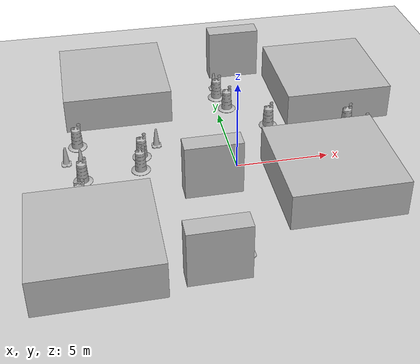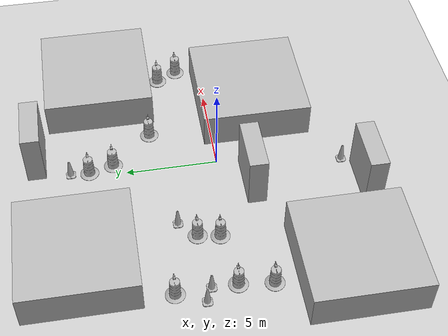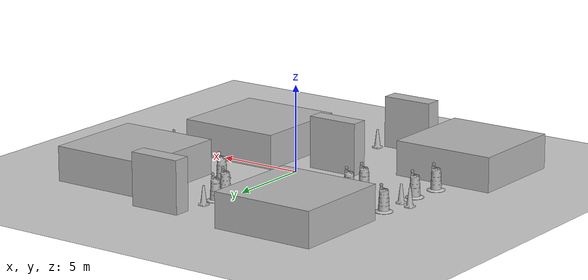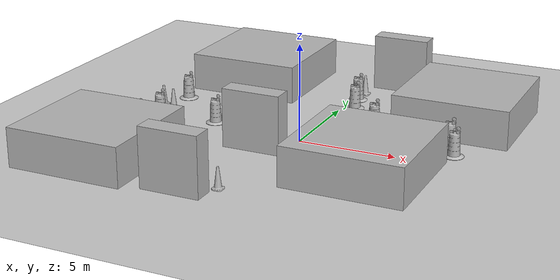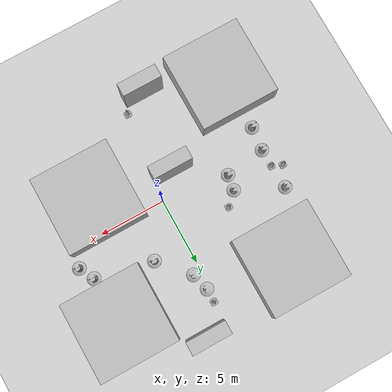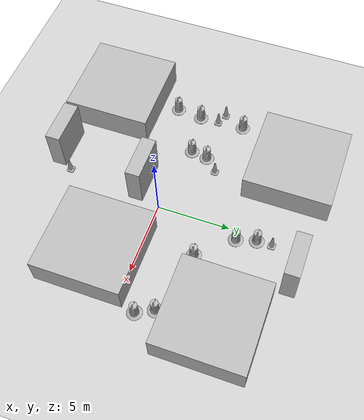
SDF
<sdf version="1.7">
 <world name="default">
  <light name="sun" type="directional">
   <pose>0 0 10 0 -0 0</pose>
   <diffuse>0.8 0.8 0.8 1</diffuse>
   <specular>0.2 0.2 0.2 1</specular>
   <attenuation>
    <range>1000</range>
    <constant>0.9</constant>
    <linear>0.01</linear>
    <quadratic>0.001</quadratic>
   </attenuation>
   <direction>-0.5 0.1 -0.9</direction>
   <spot><inner_angle>0</inner_angle><outer_angle>0</outer_angle><falloff>0</falloff></spot>
  </light>
  <model name="ground_plane">
   <static>1</static>
   <link name="link">
    <collision name="collision">
     <geometry><plane><normal>0 0 1</normal><size>100 100</size></plane></geometry>
     <surface><friction><ode><mu>100</mu><mu2>50</mu2></ode></friction></surface>
    </collision>
    <visual name="visual">
     <cast_shadows>0</cast_shadows>
     <geometry><plane><normal>0 0 1</normal><size>100 100</size></plane></geometry>
     <material>
      <script><uri>file://media/materials/scripts/gazebo.material</uri><name>Gazebo/Grey</name></script>
     </material>
    </visual>
   </link>
  </model>
  <gravity>0 0 -9.8</gravity>
  <magnetic_field>6e-06 2.3e-05 -4.2e-05</magnetic_field>
  <atmosphere type="adiabatic"/>
  <physics type="ode">
   <max_step_size>0.005</max_step_size>
   <real_time_factor>1</real_time_factor>
   <real_time_update_rate>200</real_time_update_rate>
  </physics>
  <scene><ambient>0.4 0.4 0.4 1</ambient><background>0.7 0.7 0.7 1</background><shadows>1</shadows></scene>
  <audio><device>default</device></audio>
  <spherical_coordinates>
   <surface_model>EARTH_WGS84</surface_model>
   <latitude_deg>0</latitude_deg>
   <longitude_deg>0</longitude_deg>
   <elevation>0</elevation>
   <heading_deg>0</heading_deg>
  </spherical_coordinates>
  <model name="box_target_red">
   <pose>-7.90417 -5.76292 1 0 -0 0</pose>
   <static>1</static>
   <link name="link">
    <collision name="collision"><geometry><box><size>6 6 2</size></box></geometry></collision>
    <visual name="visual">
     <geometry><mesh><uri>model://box_target_red/meshes/mesh.dae</uri></mesh></geometry>
    </visual>
   </link>
  </model>
  <model name="brick_box_3x1x3">
   <static>1</static>
   <link name="chassis">
    <pose>0 0 1.5 0 -0 0</pose>
    <collision name="collision"><geometry><box><size>3 1 3</size></box></geometry></collision>
    <visual name="visual">
     <geometry><mesh><uri>model://brick_box_3x1x3/meshes/simple_box.dae</uri><scale>3 1 3</scale></mesh></geometry>
     <material>
      <script>
       <uri>model://brick_box_3x1x3/materials/scripts</uri>
       <uri>model://brick_box_3x1x3/materials/textures</uri>
       <name>BrickBox/Diffuse</name>
      </script>
     </material>
    </visual>
   </link>
   <pose>-2.56376 -7.80352 0 0 -0 0</pose>
  </model>
  <model name="brick_box_3x1x3_0">
   <static>1</static>
   <link name="chassis">
    <pose>0 0 1.5 0 -0 0</pose>
    <collision name="collision"><geometry><box><size>3 1 3</size></box></geometry></collision>
    <visual name="visual">
     <geometry><mesh><uri>model://brick_box_3x1x3/meshes/simple_box.dae</uri><scale>3 1 3</scale></mesh></geometry>
     <material>
      <script>
       <uri>model://brick_box_3x1x3/materials/scripts</uri>
       <uri>model://brick_box_3x1x3/materials/textures</uri>
       <name>BrickBox/Diffuse</name>
      </script>
     </material>
    </visual>
   </link>
   <pose>1.80974 9.84653 0 0 -0 0</pose>
  </model>
  <model name="Construction Barrel">
   <link name="link">
    <inertial>
     <pose>0 0 0.4 0 -0 0</pose>
     <mass>500</mass>
     <inertia><ixx>51.2096</ixx><iyy>51.2096</iyy><izz>25</izz><ixy>0</ixy><ixz>0</ixz><iyz>0</iyz></inertia>
    </inertial>
    <collision name="collision">
     <geometry><mesh><uri>model://construction_barrel/meshes/construction_barrel.dae</uri></mesh></geometry>
    </collision>
    <visual name="visual">
     <geometry><mesh><uri>model://construction_barrel/meshes/construction_barrel.dae</uri></mesh></geometry>
    </visual>
   </link>
   <pose>-8.29211 -1.57068 1e-06 3e-06 2e-06 -2.8e-05</pose>
  </model>
  <model name="Construction Barrel_0">
   <link name="link">
    <inertial>
     <pose>0 0 0.4 0 -0 0</pose>
     <mass>500</mass>
     <inertia><ixx>51.2096</ixx><iyy>51.2096</iyy><izz>25</izz><ixy>0</ixy><ixz>0</ixz><iyz>0</iyz></inertia>
    </inertial>
    <collision name="collision">
     <geometry><mesh><uri>model://construction_barrel/meshes/construction_barrel.dae</uri></mesh></geometry>
    </collision>
    <visual name="visual">
     <geometry><mesh><uri>model://construction_barrel/meshes/construction_barrel.dae</uri></mesh></geometry>
    </visual>
   </link>
   <pose>-8.09168 0.234017 1e-06 3e-06 2e-06 -2.7e-05</pose>
  </model>
  <model name="box_target_green">
   <pose>6.60992 6.07777 1 0 -0 0</pose>
   <static>1</static>
   <link name="link">
    <collision name="collision"><geometry><box><size>6 6 2</size></box></geometry></collision>
    <visual name="visual">
     <geometry><mesh><uri>model://box_target_green/meshes/mesh.dae</uri></mesh></geometry>
    </visual>
   </link>
  </model>
  <model name="box_target_green_0">
   <pose>4.41531 -2.53798 1 0 -0 0</pose>
   <static>1</static>
   <link name="link">
    <collision name="collision"><geometry><box><size>6 6 2</size></box></geometry></collision>
    <visual name="visual">
     <geometry><mesh><uri>model://box_target_green/meshes/mesh.dae</uri></mesh></geometry>
    </visual>
   </link>
  </model>
  <model name="Construction Cone">
   <link name="link">
    <collision name="collision">
     <geometry>
      <mesh><scale>10 10 10</scale><uri>model://construction_cone/meshes/construction_cone.dae</uri></mesh>
     </geometry>
    </collision>
    <visual name="visual">
     <geometry>
      <mesh><scale>10 10 10</scale><uri>model://construction_cone/meshes/construction_cone.dae</uri></mesh>
     </geometry>
    </visual>
    <inertial>
     <inertia><ixx>1</ixx><ixy>0</ixy><ixz>0</ixz><iyy>1</iyy><iyz>0</iyz><izz>1</izz></inertia>
     <mass>1</mass>
    </inertial>
   </link>
   <pose>-8.87093 1.90009 -1e-05 -1e-06 0 0</pose>
  </model>
  <model name="Construction Barrel_1">
   <link name="link">
    <inertial>
     <pose>0 0 0.4 0 -0 0</pose>
     <mass>500</mass>
     <inertia><ixx>51.2096</ixx><iyy>51.2096</iyy><izz>25</izz><ixy>0</ixy><ixz>0</ixz><iyz>0</iyz></inertia>
    </inertial>
    <collision name="collision">
     <geometry><mesh><uri>model://construction_barrel/meshes/construction_barrel.dae</uri></mesh></geometry>
    </collision>
    <visual name="visual">
     <geometry><mesh><uri>model://construction_barrel/meshes/construction_barrel.dae</uri></mesh></geometry>
    </visual>
   </link>
   <pose>-8.2063 3.40038 1e-06 3e-06 2e-06 -2.2e-05</pose>
  </model>
  <model name="box_target_red_0">
   <pose>-5.71464 7.96418 1 0 -0 0</pose>
   <static>1</static>
   <link name="link">
    <collision name="collision"><geometry><box><size>6 6 2</size></box></geometry></collision>
    <visual name="visual">
     <geometry><mesh><uri>model://box_target_red/meshes/mesh.dae</uri></mesh></geometry>
    </visual>
   </link>
  </model>
  <model name="Construction Cone_0">
   <link name="link">
    <collision name="collision">
     <geometry>
      <mesh><scale>10 10 10</scale><uri>model://construction_cone/meshes/construction_cone.dae</uri></mesh>
     </geometry>
    </collision>
    <visual name="visual">
     <geometry>
      <mesh><scale>10 10 10</scale><uri>model://construction_cone/meshes/construction_cone.dae</uri></mesh>
     </geometry>
    </visual>
    <inertial>
     <inertia><ixx>1</ixx><ixy>0</ixy><ixz>0</ixz><iyy>1</iyy><iyz>0</iyz><izz>1</izz></inertia>
     <mass>1</mass>
    </inertial>
   </link>
   <pose>0.300631 8.02026 -1e-05 0 -0 0</pose>
  </model>
  <model name="Construction Barrel_2">
   <link name="link">
    <inertial>
     <pose>0 0 0.4 0 -0 0</pose>
     <mass>500</mass>
     <inertia><ixx>51.2096</ixx><iyy>51.2096</iyy><izz>25</izz><ixy>0</ixy><ixz>0</ixz><iyz>0</iyz></inertia>
    </inertial>
    <collision name="collision">
     <geometry><mesh><uri>model://construction_barrel/meshes/construction_barrel.dae</uri></mesh></geometry>
    </collision>
    <visual name="visual">
     <geometry><mesh><uri>model://construction_barrel/meshes/construction_barrel.dae</uri></mesh></geometry>
    </visual>
   </link>
   <pose>0.281528 7.00608 -0 0 0 -1.8e-05</pose>
  </model>
  <model name="Construction Barrel_3">
   <link name="link">
    <inertial>
     <pose>0 0 0.4 0 -0 0</pose>
     <mass>500</mass>
     <inertia><ixx>51.2096</ixx><iyy>51.2096</iyy><izz>25</izz><ixy>0</ixy><ixz>0</ixz><iyz>0</iyz></inertia>
    </inertial>
    <collision name="collision">
     <geometry><mesh><uri>model://construction_barrel/meshes/construction_barrel.dae</uri></mesh></geometry>
    </collision>
    <visual name="visual">
     <geometry><mesh><uri>model://construction_barrel/meshes/construction_barrel.dae</uri></mesh></geometry>
    </visual>
   </link>
   <pose>0.633811 5.67481 -2e-06 8e-06 -4e-06 -1.7e-05</pose>
  </model>
  <model name="Construction Barrel_4">
   <link name="link">
    <inertial>
     <pose>0 0 0.4 0 -0 0</pose>
     <mass>500</mass>
     <inertia><ixx>51.2096</ixx><iyy>51.2096</iyy><izz>25</izz><ixy>0</ixy><ixz>0</ixz><iyz>0</iyz></inertia>
    </inertial>
    <collision name="collision">
     <geometry><mesh><uri>model://construction_barrel/meshes/construction_barrel.dae</uri></mesh></geometry>
    </collision>
    <visual name="visual">
     <geometry><mesh><uri>model://construction_barrel/meshes/construction_barrel.dae</uri></mesh></geometry>
    </visual>
   </link>
   <pose>-5.03948 0.625659 -1e-06 3e-06 7e-06 -1.5e-05</pose>
  </model>
  <model name="Construction Barrel_5">
   <link name="link">
    <inertial>
     <pose>0 0 0.4 0 -0 0</pose>
     <mass>500</mass>
     <inertia><ixx>51.2096</ixx><iyy>51.2096</iyy><izz>25</izz><ixy>0</ixy><ixz>0</ixz><iyz>0</iyz></inertia>
    </inertial>
    <collision name="collision">
     <geometry><mesh><uri>model://construction_barrel/meshes/construction_barrel.dae</uri></mesh></geometry>
    </collision>
    <visual name="visual">
     <geometry><mesh><uri>model://construction_barrel/meshes/construction_barrel.dae</uri></mesh></geometry>
    </visual>
   </link>
   <pose>-4.84756 1.7915 0 0 0 -1.5e-05</pose>
  </model>
  <model name="Construction Barrel_6">
   <link name="link">
    <inertial>
     <pose>0 0 0.4 0 -0 0</pose>
     <mass>500</mass>
     <inertia><ixx>51.2096</ixx><iyy>51.2096</iyy><izz>25</izz><ixy>0</ixy><ixz>0</ixz><iyz>0</iyz></inertia>
    </inertial>
    <collision name="collision">
     <geometry><mesh><uri>model://construction_barrel/meshes/construction_barrel.dae</uri></mesh></geometry>
    </collision>
    <visual name="visual">
     <geometry><mesh><uri>model://construction_barrel/meshes/construction_barrel.dae</uri></mesh></geometry>
    </visual>
   </link>
   <pose>2.58159 3.46556 -0 1e-06 -1e-06 -1.2e-05</pose>
  </model>
  <model name="Construction Barrel_7">
   <link name="link">
    <inertial>
     <pose>0 0 0.4 0 -0 0</pose>
     <mass>500</mass>
     <inertia><ixx>51.2096</ixx><iyy>51.2096</iyy><izz>25</izz><ixy>0</ixy><ixz>0</ixz><iyz>0</iyz></inertia>
    </inertial>
    <collision name="collision">
     <geometry><mesh><uri>model://construction_barrel/meshes/construction_barrel.dae</uri></mesh></geometry>
    </collision>
    <visual name="visual">
     <geometry><mesh><uri>model://construction_barrel/meshes/construction_barrel.dae</uri></mesh></geometry>
    </visual>
   </link>
   <pose>7.48323 1.33782 -1e-06 0 5e-06 -1e-05</pose>
  </model>
  <model name="Construction Barrel_8">
   <link name="link">
    <inertial>
     <pose>0 0 0.4 0 -0 0</pose>
     <mass>500</mass>
     <inertia><ixx>51.2096</ixx><iyy>51.2096</iyy><izz>25</izz><ixy>0</ixy><ixz>0</ixz><iyz>0</iyz></inertia>
    </inertial>
    <collision name="collision">
     <geometry><mesh><uri>model://construction_barrel/meshes/construction_barrel.dae</uri></mesh></geometry>
    </collision>
    <visual name="visual">
     <geometry><mesh><uri>model://construction_barrel/meshes/construction_barrel.dae</uri></mesh></geometry>
    </visual>
   </link>
   <pose>6.90942 2.47825 -2e-06 -0 7e-06 -8e-06</pose>
  </model>
  <model name="brick_box_3x1x3_1">
   <static>1</static>
   <link name="chassis">
    <pose>0 0 1.5 0 -0 0</pose>
    <collision name="collision"><geometry><box><size>3 1 3</size></box></geometry></collision>
    <visual name="visual">
     <geometry><mesh><uri>model://brick_box_3x1x3/meshes/simple_box.dae</uri><scale>3 1 3</scale></mesh></geometry>
     <material>
      <script>
       <uri>model://brick_box_3x1x3/materials/scripts</uri>
       <uri>model://brick_box_3x1x3/materials/textures</uri>
       <name>BrickBox/Diffuse</name>
      </script>
     </material>
    </visual>
   </link>
   <pose>-1.62285 -1.69788 0 0 -0 0</pose>
  </model>
  <model name="Construction Cone_1">
   <link name="link">
    <collision name="collision">
     <geometry>
      <mesh><scale>10 10 10</scale><uri>model://construction_cone/meshes/construction_cone.dae</uri></mesh>
     </geometry>
    </collision>
    <visual name="visual">
     <geometry>
      <mesh><scale>10 10 10</scale><uri>model://construction_cone/meshes/construction_cone.dae</uri></mesh>
     </geometry>
    </visual>
    <inertial>
     <inertia><ixx>1</ixx><ixy>0</ixy><ixz>0</ixz><iyy>1</iyy><iyz>0</iyz><izz>1</izz></inertia>
     <mass>1</mass>
    </inertial>
   </link>
   <pose>-3.9384 2.69115 -6e-06 2e-06 -0 0</pose>
  </model>
  <model name="Construction Cone_2">
   <link name="link">
    <collision name="collision">
     <geometry>
      <mesh><scale>10 10 10</scale><uri>model://construction_cone/meshes/construction_cone.dae</uri></mesh>
     </geometry>
    </collision>
    <visual name="visual">
     <geometry>
      <mesh><scale>10 10 10</scale><uri>model://construction_cone/meshes/construction_cone.dae</uri></mesh>
     </geometry>
    </visual>
    <inertial>
     <inertia><ixx>1</ixx><ixy>0</ixy><ixz>0</ixz><iyy>1</iyy><iyz>0</iyz><izz>1</izz></inertia>
     <mass>1</mass>
    </inertial>
   </link>
   <pose>-0.862736 -6.84836 -0 0 -0 0</pose>
  </model>
  <model name="Construction Cone_3">
   <link name="link">
    <collision name="collision">
     <geometry>
      <mesh><scale>10 10 10</scale><uri>model://construction_cone/meshes/construction_cone.dae</uri></mesh>
     </geometry>
    </collision>
    <visual name="visual">
     <geometry>
      <mesh><scale>10 10 10</scale><uri>model://construction_cone/meshes/construction_cone.dae</uri></mesh>
     </geometry>
    </visual>
    <inertial>
     <inertia><ixx>1</ixx><ixy>0</ixy><ixz>0</ixz><iyy>1</iyy><iyz>0</iyz><izz>1</izz></inertia>
     <mass>1</mass>
    </inertial>
   </link>
   <pose>-8.09604 1.57045 -0 0 -1e-06 0</pose>
  </model>
 </world>
</sdf>
